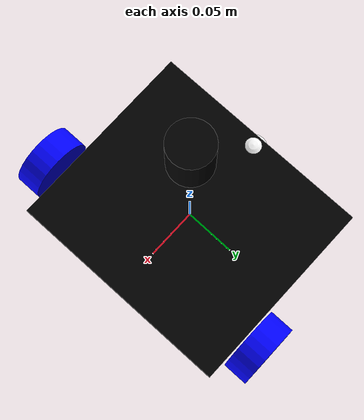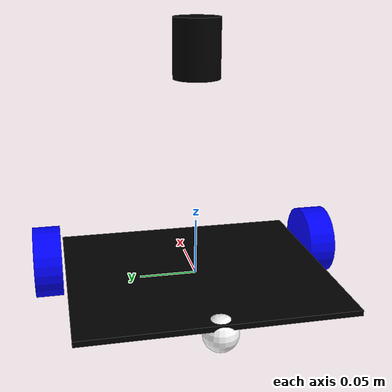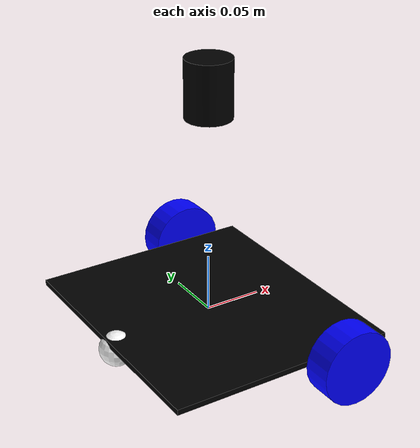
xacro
<?xml version="1.0"?>
<robot name="visual">

	<material name="blue">
		<color rgba="0 0 1 1"/>
	</material>
	<material name="black">
		<color rgba="0 0 0 1"/>
	</material>
	<material name="white">
		<color rgba="1 1 1 1"/>
	</material>

	<!-- Odom link (корень без инерции) -->
	<link name="odom"/>

	<!-- Основная платформа (с инерцией) -->
	<link name="base_link">
		<visual>
			<geometry>
				<box size="0.2 0.23 0.005"/>
			</geometry>
			<material name="black"/>
		</visual>
		<collision>
			<geometry>
				<box size="0.2 0.23 0.005"/>
			</geometry>
		</collision>
		<inertial>
			<mass value="10"/>
			<inertia ixx="1e-3" ixy="0" ixz="0"
			         iyy="1e-3" iyz="0" izz="1e-3"/>
		</inertial>
	</link>

	<joint name="base_link_joint" type="fixed">
		<parent link="odom"/>
		<child link="base_link"/>
		<origin xyz="0 0 0" rpy="0 0 0"/>
	</joint>

	<!-- Промежуточное звено (left_base) -->
	<link name="left_base">
		<visual>
			<geometry>
				<box size="0.01 0.01 0.01"/>
			</geometry>
		</visual>
	</link>

	<joint name="left_base_joint" type="fixed">
		<parent link="base_link"/>
		<child link="left_base"/>
		<!-- Joint находится в позиции оси колеса -->
		<origin xyz="0.05 0.13 0"/>
	</joint>

	<!-- Левое колесо -->
	<link name="left_wheel">
		<visual>
			<origin rpy="1.57075 0 0" xyz="0 0 0"/>
			<geometry>
				<cylinder length="0.025" radius="0.0325"/>
			</geometry>
			<material name="blue"/>
		</visual>
		<collision>
			<origin rpy="1.57075 0 0" xyz="0 0 0"/>
			<geometry>
				<cylinder length="0.025" radius="0.0325"/>
			</geometry>
		</collision>
		<inertial>
			<mass value="1"/>
			<inertia ixx="1e-3" ixy="0" ixz="0"
			         iyy="1e-3" iyz="0" izz="1e-3"/>
		</inertial>
	</link>

	<joint name="left_wheel_joint" type="continuous">
		<axis xyz="0 1 0"/>
		<parent link="left_base"/>
		<child link="left_wheel"/>
		<!-- Колесо на нулевой позиции относительно промежуточного звена -->
		<origin xyz="0 0 0" rpy="0 0 0"/>
		<command_interface name="velocity"/><!-- управляем скорость колеса -->
		<state_interface name="position"/><!-- состояние: пройденный угол -->
		<state_interface name="velocity"/><!-- состояние: текущая скорость -->
	</joint>

	<!-- Промежуточное звено (right_base) -->
	<link name="right_base">
		<visual>
			<geometry>
				<box size="0.01 0.01 0.01"/>
			</geometry>
		</visual>
	</link>

	<joint name="right_base_joint" type="fixed">
		<parent link="base_link"/>
		<child link="right_base"/>
		<!-- Joint находится в позиции оси колеса -->
		<origin xyz="0.05 -0.13 0"/>
	</joint>

	<!-- Правое колесо -->
	<link name="right_wheel">
		<visual>
			<origin rpy="1.57075 0 0" xyz="0 0 0"/>
			<geometry>
				<cylinder length="0.025" radius="0.0325"/>
			</geometry>
			<material name="blue"/>
		</visual>
		<collision>
			<origin rpy="1.57075 0 0" xyz="0 0 0"/>
			<geometry>
				<cylinder length="0.025" radius="0.0325"/>
			</geometry>
		</collision>
		<inertial>
			<mass value="1"/>
			<inertia ixx="1e-3" ixy="0" ixz="0"
			         iyy="1e-3" iyz="0" izz="1e-3"/>
		</inertial>
	</link>

	<joint name="right_wheel_joint" type="continuous">
		<axis xyz="0 1 0"/>
		<parent link="right_base"/>
		<child link="right_wheel"/>
		<!-- Колесо на нулевой позиции относительно промежуточного звена -->
		<origin xyz="0 0 0" rpy="0 0 0"/>
		<command_interface name="velocity"/><!-- управляем скорость колеса -->
		<state_interface name="position"/><!-- состояние: пройденный угол -->
		<state_interface name="velocity"/><!-- состояние: текущая скорость -->
	</joint>

	<link name="caster_wheel">
		<visual>
			<origin xyz="0 0 0" rpy="0 0 0"/>
			<geometry>
				<sphere radius="0.015"/>
			</geometry>
			<material name="white"/>
		</visual>
		<collision>
			<origin xyz="0 0 0" rpy="0 0 0"/>
			<geometry>
				<sphere radius="0.015"/>
			</geometry>
		</collision>
		<inertial>
			<mass value="0.1"/>
			<inertia ixx="1e-4" ixy="0" ixz="0"
			         iyy="1e-3" iyz="0" izz="1e-3"/>
		</inertial>
	</link>

	<joint name="caster_wheel_joint" type="fixed">
		<parent link="base_link"/>
		<child link="caster_wheel"/>
		<origin xyz="-0.09 0 -0.01"/>
	</joint>

		<!--лидар -->
	<link name="lidar_link">
	<visual>
		<geometry>
		<cylinder length="0.05" radius="0.02"/>
		</geometry>
		<material name="black">
		<color rgba="0 0 0 1"/>
		</material>
	</visual>
	<collision>
		<geometry>
		<cylinder length="0.05" radius="0.02"/>
		</geometry>
	</collision>
	<inertial>
		<mass value="0.1" />
		<origin xyz="0 0 0"/>
		<inertia ixx="0.001" ixy="0.0" ixz="0.0" iyy="0.001" iyz="0.0" izz="0.001" />
	</inertial>
	</link>

	<!-- Фиксированный шарнир между базой и лидаром -->
	<joint name="lidar_joint" type="fixed">
	<parent link="base_link"/>
	<child link="lidar_link"/>
	<!-- Смещение (xyz) и ориентация (rpy) лидара относительно base_link -->
	<origin xyz="0 0 0.2" rpy="0 0 0"/>
	</joint>

	<ros2_control name="my_robot_hardware" type="system">
		<hardware>
			<!-- Подключаем эмуляцию аппаратной части: GenericSystem с вычислением динамики -->
			<plugin>mock_components/GenericSystem</plugin>
			<param name="update_rate" type="int">50</param>
			<param name="calculate_dynamics" type="bool">true</param>
		</hardware>
		<!-- Описание управляемых шарниров -->
		<joint name="left_wheel_joint">
			<command_interface name="velocity"/><!-- управляем скорость колеса -->
			<state_interface name="position"/><!-- состояние: пройденный угол -->
			<state_interface name="velocity"/><!-- состояние: текущая скорость -->
		</joint>
		<joint name="right_wheel_joint">
			<command_interface name="velocity"/>
			<state_interface name="position"/>
			<state_interface name="velocity"/>
		</joint>
	</ros2_control>

</robot>
